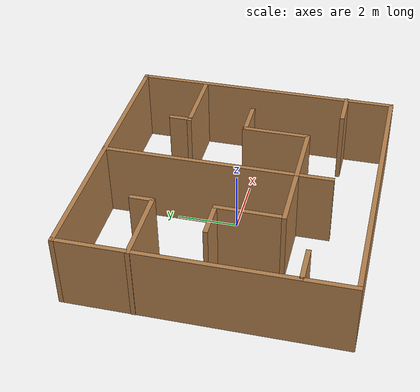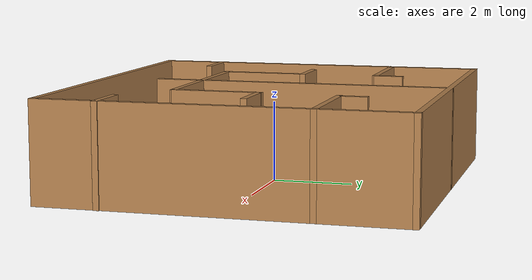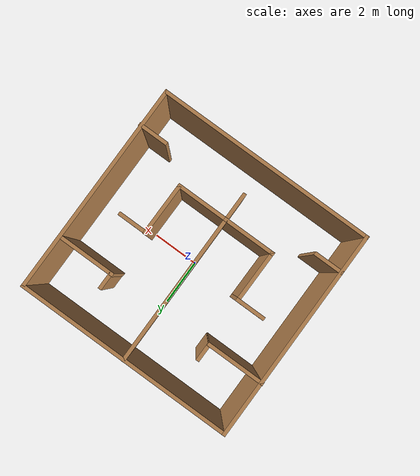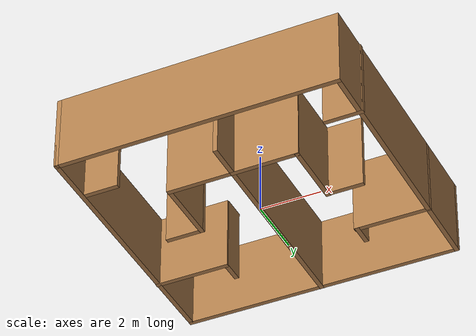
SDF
<?xml version='1.0'?>
<sdf version='1.7'>
  <model name='turtlebot3_maze'>
    <link name='Wall_0'>
      <pose>4.55675 -0.009699 0 0 -0 1.5708</pose>
      <self_collide>0</self_collide>
      <enable_wind>0</enable_wind>
      <kinematic>0</kinematic>
      <visual name='Wall_0_Visual'>
        <pose>0 0 1.25 0 -0 0</pose>
        <geometry>
          <box>
            <size>9 0.15 2.5</size>
          </box>
        </geometry>
        <material>
          <script>
            <uri>file://media/materials/scripts/gazebo.material</uri>
            <name>Gazebo/Wood</name>
          </script>
          <ambient>1 1 1 1</ambient>
          <shader type='pixel'/>
        </material>
        <meta>
          <layer>0</layer>
        </meta>
        <transparency>0</transparency>
        <cast_shadows>1</cast_shadows>
      </visual>
      <collision name='Wall_0_Collision'>
        <laser_retro>0</laser_retro>
        <max_contacts>10</max_contacts>
        <pose>0 0 1.25 0 -0 0</pose>
        <geometry>
          <box>
            <size>9 0.15 2.5</size>
          </box>
        </geometry>
        <surface>
          <friction>
            <ode>
              <mu>1</mu>
              <mu2>1</mu2>
              <fdir1>0 0 0</fdir1>
              <slip1>0</slip1>
              <slip2>0</slip2>
            </ode>
            <torsional>
              <coefficient>1</coefficient>
              <patch_radius>0</patch_radius>
              <surface_radius>0</surface_radius>
              <use_patch_radius>1</use_patch_radius>
              <ode>
                <slip>0</slip>
              </ode>
            </torsional>
          </friction>
          <bounce>
            <restitution_coefficient>0</restitution_coefficient>
            <threshold>1e+06</threshold>
          </bounce>
          <contact>
            <collide_without_contact>0</collide_without_contact>
            <collide_without_contact_bitmask>1</collide_without_contact_bitmask>
            <collide_bitmask>1</collide_bitmask>
            <ode>
              <soft_cfm>0</soft_cfm>
              <soft_erp>0.2</soft_erp>
              <kp>1e+13</kp>
              <kd>1</kd>
              <max_vel>0.01</max_vel>
              <min_depth>0</min_depth>
            </ode>
            <bullet>
              <split_impulse>1</split_impulse>
              <split_impulse_penetration_threshold>-0.01</split_impulse_penetration_threshold>
              <soft_cfm>0</soft_cfm>
              <soft_erp>0.2</soft_erp>
              <kp>1e+13</kp>
              <kd>1</kd>
            </bullet>
          </contact>
        </surface>
      </collision>
    </link>
    <link name='Wall_1'>
      <pose>0.006754 4.4153 0 0 -0 3.14159</pose>
      <self_collide>0</self_collide>
      <enable_wind>0</enable_wind>
      <kinematic>0</kinematic>
      <visual name='Wall_1_Visual'>
        <pose>0 0 1.25 0 -0 0</pose>
        <geometry>
          <box>
            <size>9.25 0.15 2.5</size>
          </box>
        </geometry>
        <material>
          <script>
            <uri>file://media/materials/scripts/gazebo.material</uri>
            <name>Gazebo/Wood</name>
          </script>
          <ambient>1 1 1 1</ambient>
          <shader type='pixel'/>
        </material>
        <meta>
          <layer>0</layer>
        </meta>
        <transparency>0</transparency>
        <cast_shadows>1</cast_shadows>
      </visual>
      <collision name='Wall_1_Collision'>
        <laser_retro>0</laser_retro>
        <max_contacts>10</max_contacts>
        <pose>0 0 1.25 0 -0 0</pose>
        <geometry>
          <box>
            <size>9.25 0.15 2.5</size>
          </box>
        </geometry>
        <surface>
          <friction>
            <ode>
              <mu>1</mu>
              <mu2>1</mu2>
              <fdir1>0 0 0</fdir1>
              <slip1>0</slip1>
              <slip2>0</slip2>
            </ode>
            <torsional>
              <coefficient>1</coefficient>
              <patch_radius>0</patch_radius>
              <surface_radius>0</surface_radius>
              <use_patch_radius>1</use_patch_radius>
              <ode>
                <slip>0</slip>
              </ode>
            </torsional>
          </friction>
          <bounce>
            <restitution_coefficient>0</restitution_coefficient>
            <threshold>1e+06</threshold>
          </bounce>
          <contact>
            <collide_without_contact>0</collide_without_contact>
            <collide_without_contact_bitmask>1</collide_without_contact_bitmask>
            <collide_bitmask>1</collide_bitmask>
            <ode>
              <soft_cfm>0</soft_cfm>
              <soft_erp>0.2</soft_erp>
              <kp>1e+13</kp>
              <kd>1</kd>
              <max_vel>0.01</max_vel>
              <min_depth>0</min_depth>
            </ode>
            <bullet>
              <split_impulse>1</split_impulse>
              <split_impulse_penetration_threshold>-0.01</split_impulse_penetration_threshold>
              <soft_cfm>0</soft_cfm>
              <soft_erp>0.2</soft_erp>
              <kp>1e+13</kp>
              <kd>1</kd>
            </bullet>
          </contact>
        </surface>
      </collision>
    </link>
    <link name='Wall_10'>
      <pose>-1.05 -1.9153 0 0 -0 3.14159</pose>
      <self_collide>0</self_collide>
      <enable_wind>0</enable_wind>
      <kinematic>0</kinematic>
      <visual name='Wall_10_Visual'>
        <pose>0 0 1.25 0 -0 0</pose>
        <geometry>
          <box>
            <size>2.25 0.15 2.5</size>
          </box>
        </geometry>
        <material>
          <script>
            <uri>file://media/materials/scripts/gazebo.material</uri>
            <name>Gazebo/Wood</name>
          </script>
          <ambient>1 1 1 1</ambient>
          <shader type='pixel'/>
        </material>
        <meta>
          <layer>0</layer>
        </meta>
        <transparency>0</transparency>
        <cast_shadows>1</cast_shadows>
      </visual>
      <collision name='Wall_10_Collision'>
        <laser_retro>0</laser_retro>
        <max_contacts>10</max_contacts>
        <pose>0 0 1.25 0 -0 0</pose>
        <geometry>
          <box>
            <size>2.25 0.15 2.5</size>
          </box>
        </geometry>
        <surface>
          <friction>
            <ode>
              <mu>1</mu>
              <mu2>1</mu2>
              <fdir1>0 0 0</fdir1>
              <slip1>0</slip1>
              <slip2>0</slip2>
            </ode>
            <torsional>
              <coefficient>1</coefficient>
              <patch_radius>0</patch_radius>
              <surface_radius>0</surface_radius>
              <use_patch_radius>1</use_patch_radius>
              <ode>
                <slip>0</slip>
              </ode>
            </torsional>
          </friction>
          <bounce>
            <restitution_coefficient>0</restitution_coefficient>
            <threshold>1e+06</threshold>
          </bounce>
          <contact>
            <collide_without_contact>0</collide_without_contact>
            <collide_without_contact_bitmask>1</collide_without_contact_bitmask>
            <collide_bitmask>1</collide_bitmask>
            <ode>
              <soft_cfm>0</soft_cfm>
              <soft_erp>0.2</soft_erp>
              <kp>1e+13</kp>
              <kd>1</kd>
              <max_vel>0.01</max_vel>
              <min_depth>0</min_depth>
            </ode>
            <bullet>
              <split_impulse>1</split_impulse>
              <split_impulse_penetration_threshold>-0.01</split_impulse_penetration_threshold>
              <soft_cfm>0</soft_cfm>
              <soft_erp>0.2</soft_erp>
              <kp>1e+13</kp>
              <kd>1</kd>
            </bullet>
          </contact>
        </surface>
      </collision>
    </link>
    <link name='Wall_12'>
      <pose>-3.38176 2.12877 0 0 -0 0</pose>
      <self_collide>0</self_collide>
      <enable_wind>0</enable_wind>
      <kinematic>0</kinematic>
      <visual name='Wall_12_Visual'>
        <pose>0 0 1.25 0 -0 0</pose>
        <geometry>
          <box>
            <size>2.5 0.15 2.5</size>
          </box>
        </geometry>
        <material>
          <script>
            <uri>file://media/materials/scripts/gazebo.material</uri>
            <name>Gazebo/Wood</name>
          </script>
          <ambient>1 1 1 1</ambient>
          <shader type='pixel'/>
        </material>
        <meta>
          <layer>0</layer>
        </meta>
        <transparency>0</transparency>
        <cast_shadows>1</cast_shadows>
      </visual>
      <collision name='Wall_12_Collision'>
        <laser_retro>0</laser_retro>
        <max_contacts>10</max_contacts>
        <pose>0 0 1.25 0 -0 0</pose>
        <geometry>
          <box>
            <size>2.5 0.15 2.5</size>
          </box>
        </geometry>
        <surface>
          <friction>
            <ode>
              <mu>1</mu>
              <mu2>1</mu2>
              <fdir1>0 0 0</fdir1>
              <slip1>0</slip1>
              <slip2>0</slip2>
            </ode>
            <torsional>
              <coefficient>1</coefficient>
              <patch_radius>0</patch_radius>
              <surface_radius>0</surface_radius>
              <use_patch_radius>1</use_patch_radius>
              <ode>
                <slip>0</slip>
              </ode>
            </torsional>
          </friction>
          <bounce>
            <restitution_coefficient>0</restitution_coefficient>
            <threshold>1e+06</threshold>
          </bounce>
          <contact>
            <collide_without_contact>0</collide_without_contact>
            <collide_without_contact_bitmask>1</collide_without_contact_bitmask>
            <collide_bitmask>1</collide_bitmask>
            <ode>
              <soft_cfm>0</soft_cfm>
              <soft_erp>0.2</soft_erp>
              <kp>1e+13</kp>
              <kd>1</kd>
              <max_vel>0.01</max_vel>
              <min_depth>0</min_depth>
            </ode>
            <bullet>
              <split_impulse>1</split_impulse>
              <split_impulse_penetration_threshold>-0.01</split_impulse_penetration_threshold>
              <soft_cfm>0</soft_cfm>
              <soft_erp>0.2</soft_erp>
              <kp>1e+13</kp>
              <kd>1</kd>
            </bullet>
          </contact>
        </surface>
      </collision>
    </link>
    <link name='Wall_12_clone'>
      <pose>-3.97386 -2.84337 0 0 -0 0</pose>
      <self_collide>0</self_collide>
      <enable_wind>0</enable_wind>
      <kinematic>0</kinematic>
      <inertial>
        <inertia>
          <ixx>0</ixx>
          <ixy>0</ixy>
          <ixz>0</ixz>
          <iyy>0</iyy>
          <iyz>0</iyz>
          <izz>0</izz>
        </inertia>
        <mass>0</mass>
        <pose>0 0 0 0 -0 0</pose>
      </inertial>
      <visual name='Wall_12_Visual'>
        <pose>0 0 1.25 0 -0 0</pose>
        <geometry>
          <box>
            <size>1.2647 0.15 2.5</size>
          </box>
        </geometry>
        <material>
          <script>
            <uri>file://media/materials/scripts/gazebo.material</uri>
            <name>Gazebo/Wood</name>
          </script>
          <ambient>1 1 1 1</ambient>
          <shader type='pixel'/>
        </material>
        <meta>
          <layer>0</layer>
        </meta>
        <transparency>0</transparency>
        <cast_shadows>1</cast_shadows>
      </visual>
      <collision name='Wall_12_Collision'>
        <laser_retro>0</laser_retro>
        <max_contacts>10</max_contacts>
        <pose>0 0 1.25 0 -0 0</pose>
        <geometry>
          <box>
            <size>1.2647 0.15 2.5</size>
          </box>
        </geometry>
        <surface>
          <friction>
            <ode>
              <mu>1</mu>
              <mu2>1</mu2>
              <fdir1>0 0 0</fdir1>
              <slip1>0</slip1>
              <slip2>0</slip2>
            </ode>
            <torsional>
              <coefficient>1</coefficient>
              <patch_radius>0</patch_radius>
              <surface_radius>0</surface_radius>
              <use_patch_radius>1</use_patch_radius>
              <ode>
                <slip>0</slip>
              </ode>
            </torsional>
          </friction>
          <bounce>
            <restitution_coefficient>0</restitution_coefficient>
            <threshold>1e+06</threshold>
          </bounce>
          <contact>
            <collide_without_contact>0</collide_without_contact>
            <collide_without_contact_bitmask>1</collide_without_contact_bitmask>
            <collide_bitmask>1</collide_bitmask>
            <ode>
              <soft_cfm>0</soft_cfm>
              <soft_erp>0.2</soft_erp>
              <kp>1e+13</kp>
              <kd>1</kd>
              <max_vel>0.01</max_vel>
              <min_depth>0</min_depth>
            </ode>
            <bullet>
              <split_impulse>1</split_impulse>
              <split_impulse_penetration_threshold>-0.01</split_impulse_penetration_threshold>
              <soft_cfm>0</soft_cfm>
              <soft_erp>0.2</soft_erp>
              <kp>1e+13</kp>
              <kd>1</kd>
            </bullet>
          </contact>
        </surface>
      </collision>
    </link>
    <link name='Wall_12_clone_clone'>
      <pose>4.0282 -2.88873 0 0 -0 0</pose>
      <self_collide>0</self_collide>
      <enable_wind>0</enable_wind>
      <kinematic>0</kinematic>
      <inertial>
        <inertia>
          <ixx>0</ixx>
          <ixy>0</ixy>
          <ixz>0</ixz>
          <iyy>0</iyy>
          <iyz>0</iyz>
          <izz>0</izz>
        </inertia>
        <mass>0</mass>
        <pose>0 0 0 0 -0 0</pose>
      </inertial>
      <visual name='Wall_12_Visual'>
        <pose>0 0 1.25 0 -0 0</pose>
        <geometry>
          <box>
            <size>1.2647 0.15 2.5</size>
          </box>
        </geometry>
        <material>
          <script>
            <uri>file://media/materials/scripts/gazebo.material</uri>
            <name>Gazebo/Wood</name>
          </script>
          <ambient>1 1 1 1</ambient>
          <shader type='pixel'/>
        </material>
        <meta>
          <layer>0</layer>
        </meta>
        <transparency>0</transparency>
        <cast_shadows>1</cast_shadows>
      </visual>
      <collision name='Wall_12_Collision'>
        <laser_retro>0</laser_retro>
        <max_contacts>10</max_contacts>
        <pose>0 0 1.25 0 -0 0</pose>
        <geometry>
          <box>
            <size>1.2647 0.15 2.5</size>
          </box>
        </geometry>
        <surface>
          <friction>
            <ode>
              <mu>1</mu>
              <mu2>1</mu2>
              <fdir1>0 0 0</fdir1>
              <slip1>0</slip1>
              <slip2>0</slip2>
            </ode>
            <torsional>
              <coefficient>1</coefficient>
              <patch_radius>0</patch_radius>
              <surface_radius>0</surface_radius>
              <use_patch_radius>1</use_patch_radius>
              <ode>
                <slip>0</slip>
              </ode>
            </torsional>
          </friction>
          <bounce>
            <restitution_coefficient>0</restitution_coefficient>
            <threshold>1e+06</threshold>
          </bounce>
          <contact>
            <collide_without_contact>0</collide_without_contact>
            <collide_without_contact_bitmask>1</collide_without_contact_bitmask>
            <collide_bitmask>1</collide_bitmask>
            <ode>
              <soft_cfm>0</soft_cfm>
              <soft_erp>0.2</soft_erp>
              <kp>1e+13</kp>
              <kd>1</kd>
              <max_vel>0.01</max_vel>
              <min_depth>0</min_depth>
            </ode>
            <bullet>
              <split_impulse>1</split_impulse>
              <split_impulse_penetration_threshold>-0.01</split_impulse_penetration_threshold>
              <soft_cfm>0</soft_cfm>
              <soft_erp>0.2</soft_erp>
              <kp>1e+13</kp>
              <kd>1</kd>
            </bullet>
          </contact>
        </surface>
      </collision>
    </link>
    <link name='Wall_12_clone_clone_clone'>
      <pose>2.68373 0.201711 0 0 -0 0</pose>
      <self_collide>0</self_collide>
      <enable_wind>0</enable_wind>
      <kinematic>0</kinematic>
      <inertial>
        <inertia>
          <ixx>0</ixx>
          <ixy>0</ixy>
          <ixz>0</ixz>
          <iyy>0</iyy>
          <iyz>0</iyz>
          <izz>0</izz>
        </inertia>
        <mass>0</mass>
        <pose>0 0 0 0 -0 0</pose>
      </inertial>
      <visual name='Wall_12_Visual'>
        <pose>0 0 1.25 0 -0 0</pose>
        <geometry>
          <box>
            <size>1.2647 0.15 2.5</size>
          </box>
        </geometry>
        <material>
          <script>
            <uri>file://media/materials/scripts/gazebo.material</uri>
            <name>Gazebo/Wood</name>
          </script>
          <ambient>1 1 1 1</ambient>
          <shader type='pixel'/>
        </material>
        <meta>
          <layer>0</layer>
        </meta>
        <transparency>0</transparency>
        <cast_shadows>1</cast_shadows>
      </visual>
      <collision name='Wall_12_Collision'>
        <laser_retro>0</laser_retro>
        <max_contacts>10</max_contacts>
        <pose>0 0 1.25 0 -0 0</pose>
        <geometry>
          <box>
            <size>1.2647 0.15 2.5</size>
          </box>
        </geometry>
        <surface>
          <friction>
            <ode>
              <mu>1</mu>
              <mu2>1</mu2>
              <fdir1>0 0 0</fdir1>
              <slip1>0</slip1>
              <slip2>0</slip2>
            </ode>
            <torsional>
              <coefficient>1</coefficient>
              <patch_radius>0</patch_radius>
              <surface_radius>0</surface_radius>
              <use_patch_radius>1</use_patch_radius>
              <ode>
                <slip>0</slip>
              </ode>
            </torsional>
          </friction>
          <bounce>
            <restitution_coefficient>0</restitution_coefficient>
            <threshold>1e+06</threshold>
          </bounce>
          <contact>
            <collide_without_contact>0</collide_without_contact>
            <collide_without_contact_bitmask>1</collide_without_contact_bitmask>
            <collide_bitmask>1</collide_bitmask>
            <ode>
              <soft_cfm>0</soft_cfm>
              <soft_erp>0.2</soft_erp>
              <kp>1e+13</kp>
              <kd>1</kd>
              <max_vel>0.01</max_vel>
              <min_depth>0</min_depth>
            </ode>
            <bullet>
              <split_impulse>1</split_impulse>
              <split_impulse_penetration_threshold>-0.01</split_impulse_penetration_threshold>
              <soft_cfm>0</soft_cfm>
              <soft_erp>0.2</soft_erp>
              <kp>1e+13</kp>
              <kd>1</kd>
            </bullet>
          </contact>
        </surface>
      </collision>
    </link>
    <link name='Wall_12_clone_clone_clone_0'>
      <pose>-2.642 0.20174 0 0 -0 0</pose>
      <self_collide>0</self_collide>
      <enable_wind>0</enable_wind>
      <kinematic>0</kinematic>
      <inertial>
        <inertia>
          <ixx>0</ixx>
          <ixy>0</ixy>
          <ixz>0</ixz>
          <iyy>0</iyy>
          <iyz>0</iyz>
          <izz>0</izz>
        </inertia>
        <mass>0</mass>
        <pose>0 0 0 0 -0 0</pose>
      </inertial>
      <visual name='Wall_12_Visual'>
        <pose>0 0 1.25 0 -0 0</pose>
        <geometry>
          <box>
            <size>1.2647 0.15 2.5</size>
          </box>
        </geometry>
        <material>
          <script>
            <uri>file://media/materials/scripts/gazebo.material</uri>
            <name>Gazebo/Wood</name>
          </script>
          <ambient>1 1 1 1</ambient>
          <shader type='pixel'/>
        </material>
        <meta>
          <layer>0</layer>
        </meta>
        <transparency>0</transparency>
        <cast_shadows>1</cast_shadows>
      </visual>
      <collision name='Wall_12_Collision'>
        <laser_retro>0</laser_retro>
        <max_contacts>10</max_contacts>
        <pose>0 0 1.25 0 -0 0</pose>
        <geometry>
          <box>
            <size>1.2647 0.15 2.5</size>
          </box>
        </geometry>
        <surface>
          <friction>
            <ode>
              <mu>1</mu>
              <mu2>1</mu2>
              <fdir1>0 0 0</fdir1>
              <slip1>0</slip1>
              <slip2>0</slip2>
            </ode>
            <torsional>
              <coefficient>1</coefficient>
              <patch_radius>0</patch_radius>
              <surface_radius>0</surface_radius>
              <use_patch_radius>1</use_patch_radius>
              <ode>
                <slip>0</slip>
              </ode>
            </torsional>
          </friction>
          <bounce>
            <restitution_coefficient>0</restitution_coefficient>
            <threshold>1e+06</threshold>
          </bounce>
          <contact>
            <collide_without_contact>0</collide_without_contact>
            <collide_without_contact_bitmask>1</collide_without_contact_bitmask>
            <collide_bitmask>1</collide_bitmask>
            <ode>
              <soft_cfm>0</soft_cfm>
              <soft_erp>0.2</soft_erp>
              <kp>1e+13</kp>
              <kd>1</kd>
              <max_vel>0.01</max_vel>
              <min_depth>0</min_depth>
            </ode>
            <bullet>
              <split_impulse>1</split_impulse>
              <split_impulse_penetration_threshold>-0.01</split_impulse_penetration_threshold>
              <soft_cfm>0</soft_cfm>
              <soft_erp>0.2</soft_erp>
              <kp>1e+13</kp>
              <kd>1</kd>
            </bullet>
          </contact>
        </surface>
      </collision>
    </link>
    <link name='Wall_12_clone_clone_clone_1'>
      <pose>-2.18944 2.48019 0 0 0 -1.57442</pose>
      <self_collide>0</self_collide>
      <enable_wind>0</enable_wind>
      <kinematic>0</kinematic>
      <inertial>
        <inertia>
          <ixx>0</ixx>
          <ixy>0</ixy>
          <ixz>0</ixz>
          <iyy>0</iyy>
          <iyz>0</iyz>
          <izz>0</izz>
        </inertia>
        <mass>0</mass>
        <pose>0 0 0 0 -0 0</pose>
      </inertial>
      <visual name='Wall_12_Visual'>
        <pose>0 0 1.25 0 -0 0</pose>
        <geometry>
          <box>
            <size>0.763568 0.15 2.5</size>
          </box>
        </geometry>
        <material>
          <script>
            <uri>file://media/materials/scripts/gazebo.material</uri>
            <name>Gazebo/Wood</name>
          </script>
          <ambient>1 1 1 1</ambient>
          <shader type='pixel'/>
        </material>
        <meta>
          <layer>0</layer>
        </meta>
        <transparency>0</transparency>
        <cast_shadows>1</cast_shadows>
      </visual>
      <collision name='Wall_12_Collision'>
        <laser_retro>0</laser_retro>
        <max_contacts>10</max_contacts>
        <pose>0 0 1.25 0 -0 0</pose>
        <geometry>
          <box>
            <size>0.763568 0.15 2.5</size>
          </box>
        </geometry>
        <surface>
          <friction>
            <ode>
              <mu>1</mu>
              <mu2>1</mu2>
              <fdir1>0 0 0</fdir1>
              <slip1>0</slip1>
              <slip2>0</slip2>
            </ode>
            <torsional>
              <coefficient>1</coefficient>
              <patch_radius>0</patch_radius>
              <surface_radius>0</surface_radius>
              <use_patch_radius>1</use_patch_radius>
              <ode>
                <slip>0</slip>
              </ode>
            </torsional>
          </friction>
          <bounce>
            <restitution_coefficient>0</restitution_coefficient>
            <threshold>1e+06</threshold>
          </bounce>
          <contact>
            <collide_without_contact>0</collide_without_contact>
            <collide_without_contact_bitmask>1</collide_without_contact_bitmask>
            <collide_bitmask>1</collide_bitmask>
            <ode>
              <soft_cfm>0</soft_cfm>
              <soft_erp>0.2</soft_erp>
              <kp>1e+13</kp>
              <kd>1</kd>
              <max_vel>0.01</max_vel>
              <min_depth>0</min_depth>
            </ode>
            <bullet>
              <split_impulse>1</split_impulse>
              <split_impulse_penetration_threshold>-0.01</split_impulse_penetration_threshold>
              <soft_cfm>0</soft_cfm>
              <soft_erp>0.2</soft_erp>
              <kp>1e+13</kp>
              <kd>1</kd>
            </bullet>
          </contact>
        </surface>
      </collision>
    </link>
    <link name='Wall_12_clone_clone_clone_1_clone'>
      <pose>2.2307 2.48022 0 0 0 -1.57442</pose>
      <self_collide>0</self_collide>
      <enable_wind>0</enable_wind>
      <kinematic>0</kinematic>
      <inertial>
        <inertia>
          <ixx>0</ixx>
          <ixy>0</ixy>
          <ixz>0</ixz>
          <iyy>0</iyy>
          <iyz>0</iyz>
          <izz>0</izz>
        </inertia>
        <mass>0</mass>
        <pose>0 0 0 0 -0 0</pose>
      </inertial>
      <visual name='Wall_12_Visual'>
        <pose>0 0 1.25 0 -0 0</pose>
        <geometry>
          <box>
            <size>0.763568 0.15 2.5</size>
          </box>
        </geometry>
        <material>
          <script>
            <uri>file://media/materials/scripts/gazebo.material</uri>
            <name>Gazebo/Wood</name>
          </script>
          <ambient>1 1 1 1</ambient>
          <shader type='pixel'/>
        </material>
        <meta>
          <layer>0</layer>
        </meta>
        <transparency>0</transparency>
        <cast_shadows>1</cast_shadows>
      </visual>
      <collision name='Wall_12_Collision'>
        <laser_retro>0</laser_retro>
        <max_contacts>10</max_contacts>
        <pose>0 0 1.25 0 -0 0</pose>
        <geometry>
          <box>
            <size>0.763568 0.15 2.5</size>
          </box>
        </geometry>
        <surface>
          <friction>
            <ode>
              <mu>1</mu>
              <mu2>1</mu2>
              <fdir1>0 0 0</fdir1>
              <slip1>0</slip1>
              <slip2>0</slip2>
            </ode>
            <torsional>
              <coefficient>1</coefficient>
              <patch_radius>0</patch_radius>
              <surface_radius>0</surface_radius>
              <use_patch_radius>1</use_patch_radius>
              <ode>
                <slip>0</slip>
              </ode>
            </torsional>
          </friction>
          <bounce>
            <restitution_coefficient>0</restitution_coefficient>
            <threshold>1e+06</threshold>
          </bounce>
          <contact>
            <collide_without_contact>0</collide_without_contact>
            <collide_without_contact_bitmask>1</collide_without_contact_bitmask>
            <collide_bitmask>1</collide_bitmask>
            <ode>
              <soft_cfm>0</soft_cfm>
              <soft_erp>0.2</soft_erp>
              <kp>1e+13</kp>
              <kd>1</kd>
              <max_vel>0.01</max_vel>
              <min_depth>0</min_depth>
            </ode>
            <bullet>
              <split_impulse>1</split_impulse>
              <split_impulse_penetration_threshold>-0.01</split_impulse_penetration_threshold>
              <soft_cfm>0</soft_cfm>
              <soft_erp>0.2</soft_erp>
              <kp>1e+13</kp>
              <kd>1</kd>
            </bullet>
          </contact>
        </surface>
      </collision>
    </link>
    <link name='Wall_14'>
      <pose>3.38175 2.16652 0 0 -0 3.14159</pose>
      <self_collide>0</self_collide>
      <enable_wind>0</enable_wind>
      <kinematic>0</kinematic>
      <visual name='Wall_14_Visual'>
        <pose>0 0 1.25 0 -0 0</pose>
        <geometry>
          <box>
            <size>2.5 0.15 2.5</size>
          </box>
        </geometry>
        <material>
          <script>
            <uri>file://media/materials/scripts/gazebo.material</uri>
            <name>Gazebo/Wood</name>
          </script>
          <ambient>1 1 1 1</ambient>
          <shader type='pixel'/>
        </material>
        <meta>
          <layer>0</layer>
        </meta>
        <transparency>0</transparency>
        <cast_shadows>1</cast_shadows>
      </visual>
      <collision name='Wall_14_Collision'>
        <laser_retro>0</laser_retro>
        <max_contacts>10</max_contacts>
        <pose>0 0 1.25 0 -0 0</pose>
        <geometry>
          <box>
            <size>2.5 0.15 2.5</size>
          </box>
        </geometry>
        <surface>
          <friction>
            <ode>
              <mu>1</mu>
              <mu2>1</mu2>
              <fdir1>0 0 0</fdir1>
              <slip1>0</slip1>
              <slip2>0</slip2>
            </ode>
            <torsional>
              <coefficient>1</coefficient>
              <patch_radius>0</patch_radius>
              <surface_radius>0</surface_radius>
              <use_patch_radius>1</use_patch_radius>
              <ode>
                <slip>0</slip>
              </ode>
            </torsional>
          </friction>
          <bounce>
            <restitution_coefficient>0</restitution_coefficient>
            <threshold>1e+06</threshold>
          </bounce>
          <contact>
            <collide_without_contact>0</collide_without_contact>
            <collide_without_contact_bitmask>1</collide_without_contact_bitmask>
            <collide_bitmask>1</collide_bitmask>
            <ode>
              <soft_cfm>0</soft_cfm>
              <soft_erp>0.2</soft_erp>
              <kp>1e+13</kp>
              <kd>1</kd>
              <max_vel>0.01</max_vel>
              <min_depth>0</min_depth>
            </ode>
            <bullet>
              <split_impulse>1</split_impulse>
              <split_impulse_penetration_threshold>-0.01</split_impulse_penetration_threshold>
              <soft_cfm>0</soft_cfm>
              <soft_erp>0.2</soft_erp>
              <kp>1e+13</kp>
              <kd>1</kd>
            </bullet>
          </contact>
        </surface>
      </collision>
    </link>
    <link name='Wall_4'>
      <pose>-4.54325 -0.009699 0 0 0 -1.5708</pose>
      <self_collide>0</self_collide>
      <enable_wind>0</enable_wind>
      <kinematic>0</kinematic>
      <visual name='Wall_4_Visual'>
        <pose>0 0 1.25 0 -0 0</pose>
        <geometry>
          <box>
            <size>9 0.15 2.5</size>
          </box>
        </geometry>
        <material>
          <script>
            <uri>file://media/materials/scripts/gazebo.material</uri>
            <name>Gazebo/Wood</name>
          </script>
          <ambient>1 1 1 1</ambient>
          <shader type='pixel'/>
        </material>
        <meta>
          <layer>0</layer>
        </meta>
        <transparency>0</transparency>
        <cast_shadows>1</cast_shadows>
      </visual>
      <collision name='Wall_4_Collision'>
        <laser_retro>0</laser_retro>
        <max_contacts>10</max_contacts>
        <pose>0 0 1.25 0 -0 0</pose>
        <geometry>
          <box>
            <size>9 0.15 2.5</size>
          </box>
        </geometry>
        <surface>
          <friction>
            <ode>
              <mu>1</mu>
              <mu2>1</mu2>
              <fdir1>0 0 0</fdir1>
              <slip1>0</slip1>
              <slip2>0</slip2>
            </ode>
            <torsional>
              <coefficient>1</coefficient>
              <patch_radius>0</patch_radius>
              <surface_radius>0</surface_radius>
              <use_patch_radius>1</use_patch_radius>
              <ode>
                <slip>0</slip>
              </ode>
            </torsional>
          </friction>
          <bounce>
            <restitution_coefficient>0</restitution_coefficient>
            <threshold>1e+06</threshold>
          </bounce>
          <contact>
            <collide_without_contact>0</collide_without_contact>
            <collide_without_contact_bitmask>1</collide_without_contact_bitmask>
            <collide_bitmask>1</collide_bitmask>
            <ode>
              <soft_cfm>0</soft_cfm>
              <soft_erp>0.2</soft_erp>
              <kp>1e+13</kp>
              <kd>1</kd>
              <max_vel>0.01</max_vel>
              <min_depth>0</min_depth>
            </ode>
            <bullet>
              <split_impulse>1</split_impulse>
              <split_impulse_penetration_threshold>-0.01</split_impulse_penetration_threshold>
              <soft_cfm>0</soft_cfm>
              <soft_erp>0.2</soft_erp>
              <kp>1e+13</kp>
              <kd>1</kd>
            </bullet>
          </contact>
        </surface>
      </collision>
    </link>
    <link name='Wall_5'>
      <pose>0.006754 -4.4347 0 0 -0 0</pose>
      <self_collide>0</self_collide>
      <enable_wind>0</enable_wind>
      <kinematic>0</kinematic>
      <visual name='Wall_5_Visual'>
        <pose>0 0 1.25 0 -0 0</pose>
        <geometry>
          <box>
            <size>9.25 0.15 2.5</size>
          </box>
        </geometry>
        <material>
          <script>
            <uri>file://media/materials/scripts/gazebo.material</uri>
            <name>Gazebo/Wood</name>
          </script>
          <ambient>1 1 1 1</ambient>
          <shader type='pixel'/>
        </material>
        <meta>
          <layer>0</layer>
        </meta>
        <transparency>0</transparency>
        <cast_shadows>1</cast_shadows>
      </visual>
      <collision name='Wall_5_Collision'>
        <laser_retro>0</laser_retro>
        <max_contacts>10</max_contacts>
        <pose>0 0 1.25 0 -0 0</pose>
        <geometry>
          <box>
            <size>9.25 0.15 2.5</size>
          </box>
        </geometry>
        <surface>
          <friction>
            <ode>
              <mu>1</mu>
              <mu2>1</mu2>
              <fdir1>0 0 0</fdir1>
              <slip1>0</slip1>
              <slip2>0</slip2>
            </ode>
            <torsional>
              <coefficient>1</coefficient>
              <patch_radius>0</patch_radius>
              <surface_radius>0</surface_radius>
              <use_patch_radius>1</use_patch_radius>
              <ode>
                <slip>0</slip>
              </ode>
            </torsional>
          </friction>
          <bounce>
            <restitution_coefficient>0</restitution_coefficient>
            <threshold>1e+06</threshold>
          </bounce>
          <contact>
            <collide_without_contact>0</collide_without_contact>
            <collide_without_contact_bitmask>1</collide_without_contact_bitmask>
            <collide_bitmask>1</collide_bitmask>
            <ode>
              <soft_cfm>0</soft_cfm>
              <soft_erp>0.2</soft_erp>
              <kp>1e+13</kp>
              <kd>1</kd>
              <max_vel>0.01</max_vel>
              <min_depth>0</min_depth>
            </ode>
            <bullet>
              <split_impulse>1</split_impulse>
              <split_impulse_penetration_threshold>-0.01</split_impulse_penetration_threshold>
              <soft_cfm>0</soft_cfm>
              <soft_erp>0.2</soft_erp>
              <kp>1e+13</kp>
              <kd>1</kd>
            </bullet>
          </contact>
        </surface>
      </collision>
    </link>
    <link name='Wall_7'>
      <pose>-2e-06 0.693104 0 0 0 -1.5708</pose>
      <self_collide>0</self_collide>
      <enable_wind>0</enable_wind>
      <kinematic>0</kinematic>
      <inertial>
        <inertia>
          <ixx>0</ixx>
          <ixy>0</ixy>
          <ixz>0</ixz>
          <iyy>0</iyy>
          <iyz>0</iyz>
          <izz>0</izz>
        </inertia>
        <mass>0</mass>
        <pose>0 0 0 0 -0 0</pose>
      </inertial>
      <visual name='Wall_7_Visual'>
        <pose>0 0 1.25 0 -0 0</pose>
        <geometry>
          <box>
            <size>7.60075 0.15 2.5</size>
          </box>
        </geometry>
        <material>
          <script>
            <uri>file://media/materials/scripts/gazebo.material</uri>
            <name>Gazebo/Wood</name>
          </script>
          <ambient>1 1 1 1</ambient>
          <shader type='pixel'/>
        </material>
        <meta>
          <layer>0</layer>
        </meta>
        <transparency>0</transparency>
        <cast_shadows>1</cast_shadows>
      </visual>
      <collision name='Wall_7_Collision'>
        <laser_retro>0</laser_retro>
        <max_contacts>10</max_contacts>
        <pose>0 0 1.25 0 -0 0</pose>
        <geometry>
          <box>
            <size>7.60075 0.15 2.5</size>
          </box>
        </geometry>
        <surface>
          <friction>
            <ode>
              <mu>1</mu>
              <mu2>1</mu2>
              <fdir1>0 0 0</fdir1>
              <slip1>0</slip1>
              <slip2>0</slip2>
            </ode>
            <torsional>
              <coefficient>1</coefficient>
              <patch_radius>0</patch_radius>
              <surface_radius>0</surface_radius>
              <use_patch_radius>1</use_patch_radius>
              <ode>
                <slip>0</slip>
              </ode>
            </torsional>
          </friction>
          <bounce>
            <restitution_coefficient>0</restitution_coefficient>
            <threshold>1e+06</threshold>
          </bounce>
          <contact>
            <collide_without_contact>0</collide_without_contact>
            <collide_without_contact_bitmask>1</collide_without_contact_bitmask>
            <collide_bitmask>1</collide_bitmask>
            <ode>
              <soft_cfm>0</soft_cfm>
              <soft_erp>0.2</soft_erp>
              <kp>1e+13</kp>
              <kd>1</kd>
              <max_vel>0.01</max_vel>
              <min_depth>0</min_depth>
            </ode>
            <bullet>
              <split_impulse>1</split_impulse>
              <split_impulse_penetration_threshold>-0.01</split_impulse_penetration_threshold>
              <soft_cfm>0</soft_cfm>
              <soft_erp>0.2</soft_erp>
              <kp>1e+13</kp>
              <kd>1</kd>
            </bullet>
          </contact>
        </surface>
      </collision>
    </link>
    <link name='Wall_8'>
      <pose>1.05 -1.9153 0 0 -0 0</pose>
      <self_collide>0</self_collide>
      <enable_wind>0</enable_wind>
      <kinematic>0</kinematic>
      <visual name='Wall_8_Visual'>
        <pose>0 0 1.25 0 -0 0</pose>
        <geometry>
          <box>
            <size>2.25 0.15 2.5</size>
          </box>
        </geometry>
        <material>
          <script>
            <uri>file://media/materials/scripts/gazebo.material</uri>
            <name>Gazebo/Wood</name>
          </script>
          <ambient>1 1 1 1</ambient>
          <shader type='pixel'/>
        </material>
        <meta>
          <layer>0</layer>
        </meta>
        <transparency>0</transparency>
        <cast_shadows>1</cast_shadows>
      </visual>
      <collision name='Wall_8_Collision'>
        <laser_retro>0</laser_retro>
        <max_contacts>10</max_contacts>
        <pose>0 0 1.25 0 -0 0</pose>
        <geometry>
          <box>
            <size>2.25 0.15 2.5</size>
          </box>
        </geometry>
        <surface>
          <friction>
            <ode>
              <mu>1</mu>
              <mu2>1</mu2>
              <fdir1>0 0 0</fdir1>
              <slip1>0</slip1>
              <slip2>0</slip2>
            </ode>
            <torsional>
              <coefficient>1</coefficient>
              <patch_radius>0</patch_radius>
              <surface_radius>0</surface_radius>
              <use_patch_radius>1</use_patch_radius>
              <ode>
                <slip>0</slip>
              </ode>
            </torsional>
          </friction>
          <bounce>
            <restitution_coefficient>0</restitution_coefficient>
            <threshold>1e+06</threshold>
          </bounce>
          <contact>
            <collide_without_contact>0</collide_without_contact>
            <collide_without_contact_bitmask>1</collide_without_contact_bitmask>
            <collide_bitmask>1</collide_bitmask>
            <ode>
              <soft_cfm>0</soft_cfm>
              <soft_erp>0.2</soft_erp>
              <kp>1e+13</kp>
              <kd>1</kd>
              <max_vel>0.01</max_vel>
              <min_depth>0</min_depth>
            </ode>
            <bullet>
              <split_impulse>1</split_impulse>
              <split_impulse_penetration_threshold>-0.01</split_impulse_penetration_threshold>
              <soft_cfm>0</soft_cfm>
              <soft_erp>0.2</soft_erp>
              <kp>1e+13</kp>
              <kd>1</kd>
            </bullet>
          </contact>
        </surface>
      </collision>
    </link>
    <link name='Wall_8_clone'>
      <pose>2.10987 -0.833396 0 0 0 -1.57582</pose>
      <self_collide>0</self_collide>
      <enable_wind>0</enable_wind>
      <kinematic>0</kinematic>
      <visual name='Wall_8_Visual'>
        <pose>0 0 1.25 0 -0 0</pose>
        <geometry>
          <box>
            <size>2.25 0.15 2.5</size>
          </box>
        </geometry>
        <material>
          <script>
            <uri>file://media/materials/scripts/gazebo.material</uri>
            <name>Gazebo/Wood</name>
          </script>
          <ambient>1 1 1 1</ambient>
          <shader type='pixel'/>
        </material>
        <meta>
          <layer>0</layer>
        </meta>
        <transparency>0</transparency>
        <cast_shadows>1</cast_shadows>
      </visual>
      <collision name='Wall_8_Collision'>
        <laser_retro>0</laser_retro>
        <max_contacts>10</max_contacts>
        <pose>0 0 1.25 0 -0 0</pose>
        <geometry>
          <box>
            <size>2.25 0.15 2.5</size>
          </box>
        </geometry>
        <surface>
          <friction>
            <ode>
              <mu>1</mu>
              <mu2>1</mu2>
              <fdir1>0 0 0</fdir1>
              <slip1>0</slip1>
              <slip2>0</slip2>
            </ode>
            <torsional>
              <coefficient>1</coefficient>
              <patch_radius>0</patch_radius>
              <surface_radius>0</surface_radius>
              <use_patch_radius>1</use_patch_radius>
              <ode>
                <slip>0</slip>
              </ode>
            </torsional>
          </friction>
          <bounce>
            <restitution_coefficient>0</restitution_coefficient>
            <threshold>1e+06</threshold>
          </bounce>
          <contact>
            <collide_without_contact>0</collide_without_contact>
            <collide_without_contact_bitmask>1</collide_without_contact_bitmask>
            <collide_bitmask>1</collide_bitmask>
            <ode>
              <soft_cfm>0</soft_cfm>
              <soft_erp>0.2</soft_erp>
              <kp>1e+13</kp>
              <kd>1</kd>
              <max_vel>0.01</max_vel>
              <min_depth>0</min_depth>
            </ode>
            <bullet>
              <split_impulse>1</split_impulse>
              <split_impulse_penetration_threshold>-0.01</split_impulse_penetration_threshold>
              <soft_cfm>0</soft_cfm>
              <soft_erp>0.2</soft_erp>
              <kp>1e+13</kp>
              <kd>1</kd>
            </bullet>
          </contact>
        </surface>
      </collision>
    </link>
    <link name='Wall_8_clone_clone'>
      <pose>-2.09219 -0.859357 0 0 0 -1.57582</pose>
      <self_collide>0</self_collide>
      <enable_wind>0</enable_wind>
      <kinematic>0</kinematic>
      <visual name='Wall_8_Visual'>
        <pose>0 0 1.25 0 -0 0</pose>
        <geometry>
          <box>
            <size>2.25 0.15 2.5</size>
          </box>
        </geometry>
        <material>
          <script>
            <uri>file://media/materials/scripts/gazebo.material</uri>
            <name>Gazebo/Wood</name>
          </script>
          <ambient>1 1 1 1</ambient>
          <shader type='pixel'/>
        </material>
        <meta>
          <layer>0</layer>
        </meta>
        <transparency>0</transparency>
        <cast_shadows>1</cast_shadows>
      </visual>
      <collision name='Wall_8_Collision'>
        <laser_retro>0</laser_retro>
        <max_contacts>10</max_contacts>
        <pose>0 0 1.25 0 -0 0</pose>
        <geometry>
          <box>
            <size>2.25 0.15 2.5</size>
          </box>
        </geometry>
        <surface>
          <friction>
            <ode>
              <mu>1</mu>
              <mu2>1</mu2>
              <fdir1>0 0 0</fdir1>
              <slip1>0</slip1>
              <slip2>0</slip2>
            </ode>
            <torsional>
              <coefficient>1</coefficient>
              <patch_radius>0</patch_radius>
              <surface_radius>0</surface_radius>
              <use_patch_radius>1</use_patch_radius>
              <ode>
                <slip>0</slip>
              </ode>
            </torsional>
          </friction>
          <bounce>
            <restitution_coefficient>0</restitution_coefficient>
            <threshold>1e+06</threshold>
          </bounce>
          <contact>
            <collide_without_contact>0</collide_without_contact>
            <collide_without_contact_bitmask>1</collide_without_contact_bitmask>
            <collide_bitmask>1</collide_bitmask>
            <ode>
              <soft_cfm>0</soft_cfm>
              <soft_erp>0.2</soft_erp>
              <kp>1e+13</kp>
              <kd>1</kd>
              <max_vel>0.01</max_vel>
              <min_depth>0</min_depth>
            </ode>
            <bullet>
              <split_impulse>1</split_impulse>
              <split_impulse_penetration_threshold>-0.01</split_impulse_penetration_threshold>
              <soft_cfm>0</soft_cfm>
              <soft_erp>0.2</soft_erp>
              <kp>1e+13</kp>
              <kd>1</kd>
            </bullet>
          </contact>
        </surface>
      </collision>
    </link>
    <static>1</static>
    <allow_auto_disable>1</allow_auto_disable>
  </model>
</sdf>
